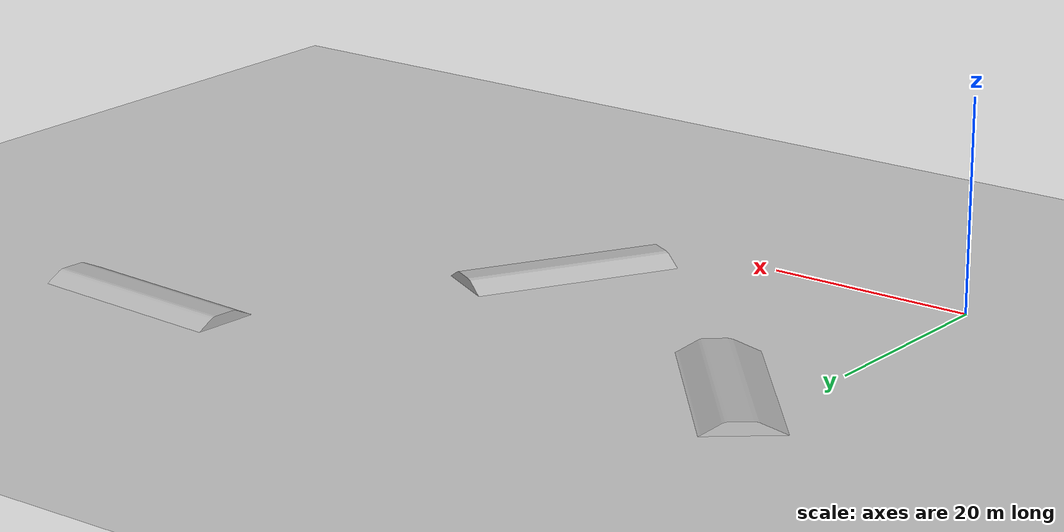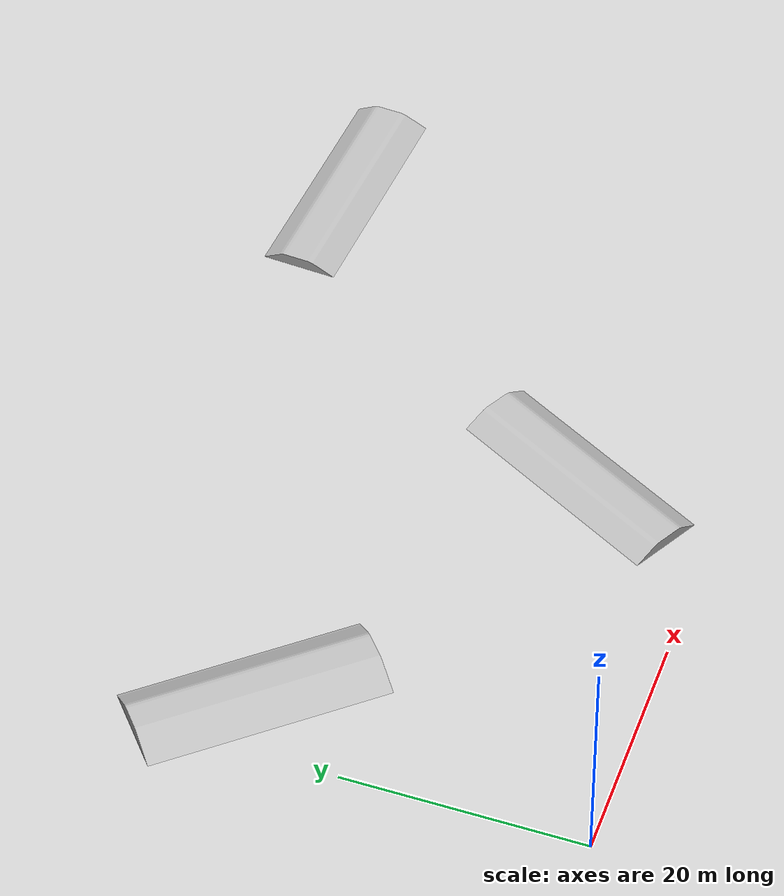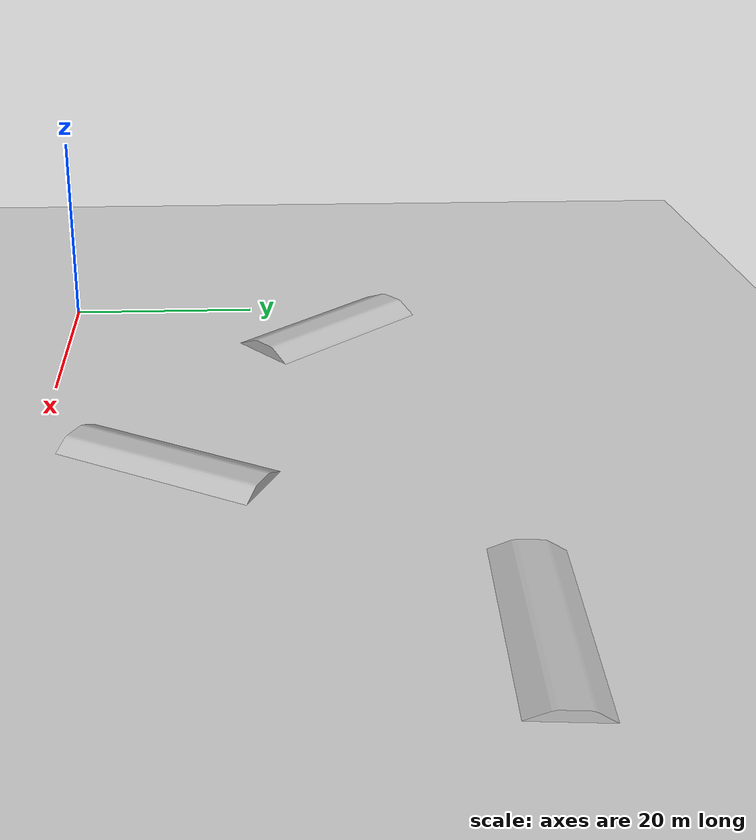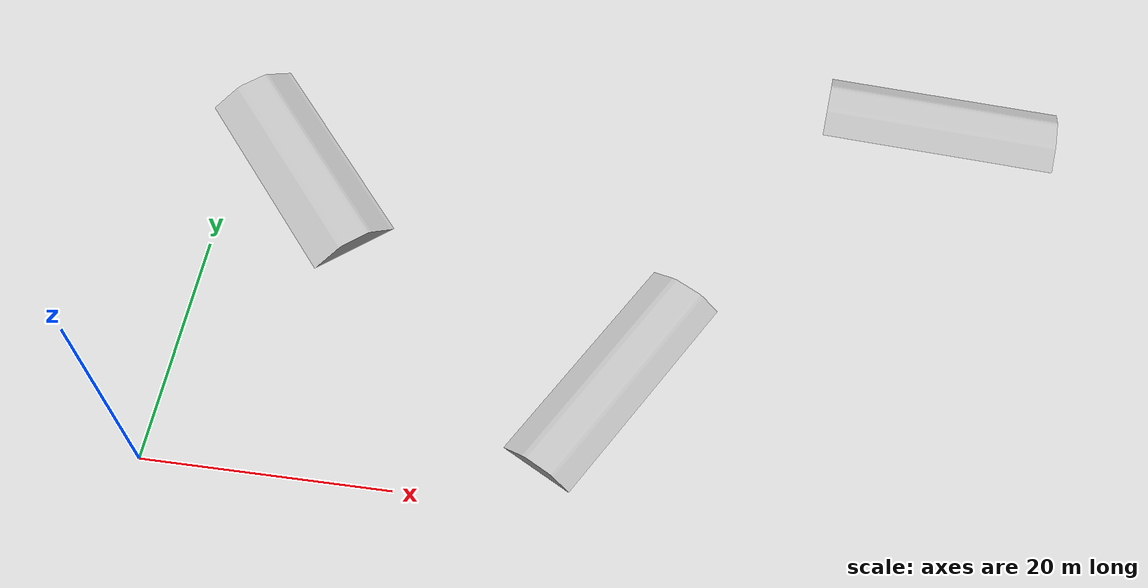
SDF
<?xml version="1.0" ?>
<sdf version="1.5">
  <world name="default">
    <!-- A global light source -->
    <include>
      <uri>model://sun</uri>
    </include>
    <!-- A ground plane -->
    <include>
      <uri>model://ground_plane</uri>
    </include>
    <!-- A slope -->
    <include>
      <uri>model://slope</uri>
    </include>
<include>
      <uri>model://slope2</uri>
    </include>
<include>
      <uri>model://slope3</uri>
    </include>
  </world>
</sdf>

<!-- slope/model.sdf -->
<sdf version="1.5">
  <model name="roughterrain_1000x1000">
    <static>true</static>
    <link name="link">
      <pose frame="">1 25 -0.25 -1.5708 0 0.7</pose>
      <collision name="collision">
        <geometry>
          <mesh>
            <uri>model://slope/meshes/slope.STL</uri>
            <scale>0.2 0.2 0.2</scale>
          </mesh>
        </geometry>
        <surface>
          <friction>
            <ode>
              <mu>300</mu>
              <mu2>150</mu2>
            </ode>
          </friction>
      </surface>
      </collision>
      <visual name="visual">
          <geometry>
             <mesh>
                <uri>model://slope/meshes/slope.STL</uri>
                <scale>0.2 0.2 0.2</scale>
             </mesh>
        </geometry>
      </visual>

    </link>
  </model>
</sdf>

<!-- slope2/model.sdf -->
<sdf version="1.5">
  <model name="roughterrain_1000x1000">
    <static>true</static>
    <link name="link">
      <pose frame="">30 15 -0.5 -1.5708 0 -0.5</pose>
      <collision name="collision">
        <geometry>
          <mesh>
            <uri>model://slope/meshes/slope.STL</uri>
            <scale>0.2 0.2 0.2</scale>
          </mesh>
        </geometry>
        <surface>
          <friction>
            <ode>
              <mu>300</mu>
              <mu2>150</mu2>
            </ode>
          </friction>
      </surface>
      </collision>
      <visual name="visual">
          <geometry>
             <mesh>
                <uri>model://slope/meshes/slope.STL</uri>
                <scale>0.2 0.2 0.2</scale>
             </mesh>
          </geometry>
      </visual>
    </link>

  </model>
</sdf>

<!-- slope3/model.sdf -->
<sdf version="1.5">
  <model name="roughterrain_1000x1000">
    <static>true</static>
    <link name="link">
      <pose frame="">60 35 -0.5 -1.5708 0 1.5</pose>
      <collision name="collision">
        <geometry>
          <mesh>
            <uri>model://slope/meshes/slope.STL</uri>
            <scale>0.2 0.2 0.2</scale>
          </mesh>
        </geometry>
        <surface>
          <friction>
            <ode>
              <mu>300</mu>
              <mu2>150</mu2>
            </ode>
          </friction>
      </surface>
      </collision>
      <visual name="visual">
          <geometry>
             <mesh>
                <uri>model://slope/meshes/slope.STL</uri>
                <scale>0.2 0.2 0.2</scale>
             </mesh>
          </geometry>
      </visual>
    </link>

  </model>
</sdf>
